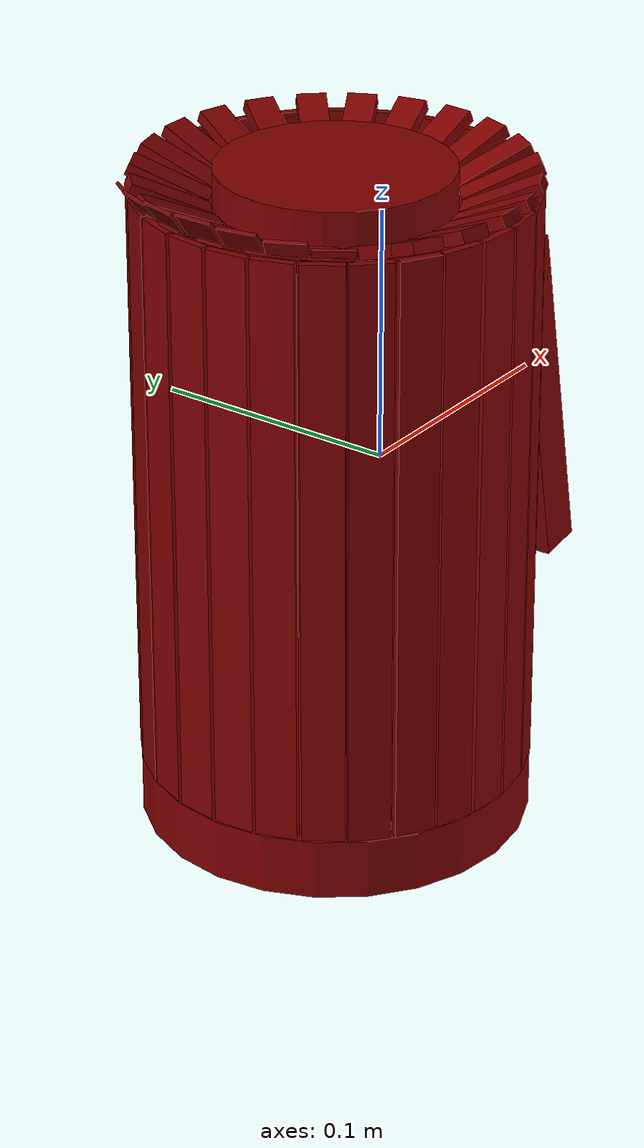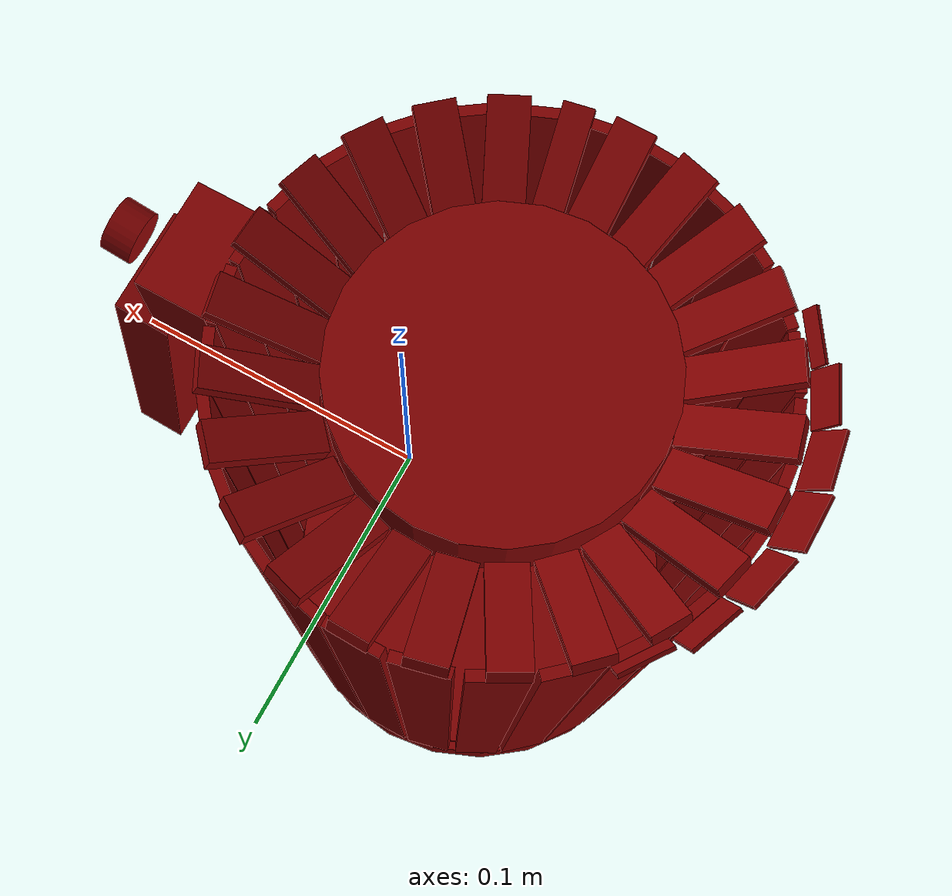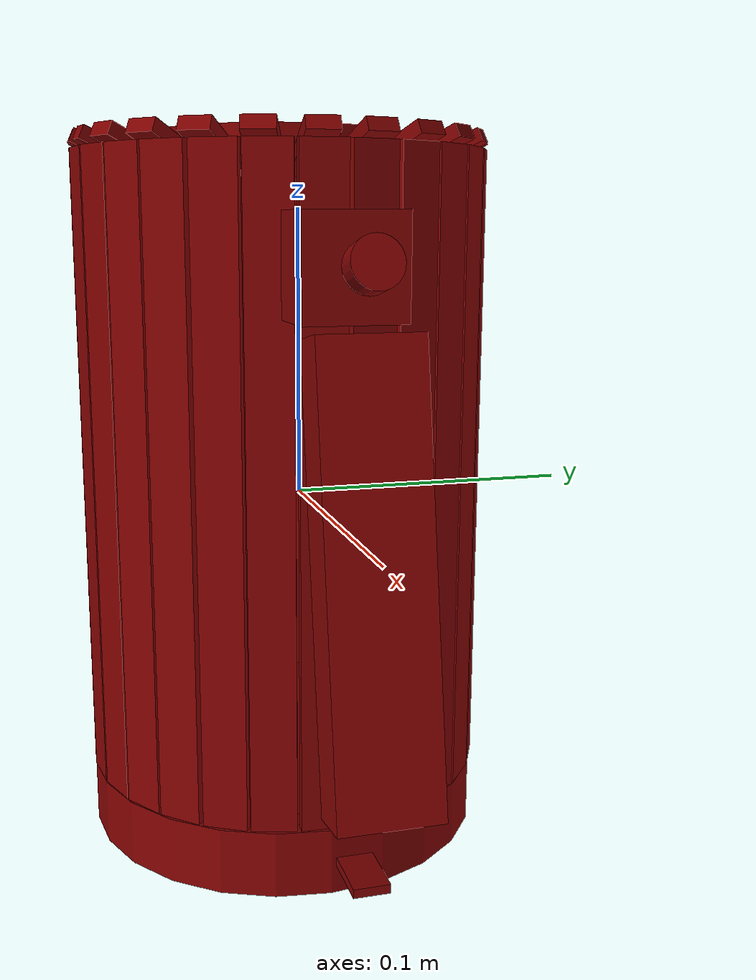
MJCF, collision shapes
<?xml version='1.0' encoding='UTF-8'?>
<mujoco model="model">
  <compiler angle="radian"/>
  <asset>
    <mesh file="visuals/Body001.obj" name="Body001_vis"/>
    <mesh file="visuals/Button001.obj" name="Button001_vis"/>
    <mesh file="visuals/Button002.obj" name="Button002_vis"/>
    <mesh file="visuals/Handle001.obj" name="Handle001_vis"/>
    <mesh file="visuals/Lid001.obj" name="Lid001_vis"/>
    <texture file="visuals/T_BC001.png" name="Body001_material" type="2d"/>
    <material name="Body001_material" rgba="1 1 1 1.0" texture="Body001_material" shininess="0.2512328028678894" specular="0.3103448502657381"/>
    <texture file="visuals/T_BC001.png" name="Button002_material" type="2d"/>
    <material name="Button002_material" rgba="1 1 1 1.0" texture="Button002_material" shininess="0.2512328028678894" specular="0.3103448502657381"/>
    <texture file="visuals/T_BC001.png" name="Handle001_material" type="2d"/>
    <material name="Handle001_material" rgba="1 1 1 1.0" texture="Handle001_material" shininess="0.2512328028678894" specular="0.3103448502657381"/>
    <texture file="visuals/T_BC001.png" name="Button001_material" type="2d"/>
    <material name="Button001_material" rgba="1 1 1 1.0" texture="Button001_material" shininess="0.2512328028678894" specular="0.3103448502657381"/>
    <texture file="visuals/T_BC001.png" name="Lid001_material" type="2d"/>
    <material name="Lid001_material" rgba="1 1 1 1.0" texture="Lid001_material" shininess="0.2512328028678894" specular="0.3103448502657381"/>
  </asset>
  <default>
    <default class="visual">
      <geom conaffinity="0" contype="0" group="1" type="mesh"/>
    </default>
    <default class="collision">
      <geom group="0" rgba="0.5 0 0 0.5"/>
    </default>
    <default class="spawn">
      <geom group="0" rgba="1 1 1 0.5" contype="0" conaffinity="0"/>
      <site group="0" rgba="1 1 1 0.5"/>
    </default>
    <default class="region">
      <geom group="1" conaffinity="0" contype="0" rgba="0 1 0 0"/>
    </default>
  </default>
  <worldbody>
    <body>
      <body name="object">
        <geom mesh="Body001_vis" type="mesh" solimp="0.998 0.998 0.001" solref="0.001 1" density="100" friction="0.95 0.3 0.1" class="visual" material="Body001_material"/>
        <geom class="collision" type="cylinder" pos="-0.028929295018315315 2.581148919489351e-06 -0.12246000021696091" size="0.07494957745075226 0.011956119909882545" quat="0.7071068286895752 0.0 0.0 0.7071067690849304"/>
        <body name="Button002">
          <joint axis="0.0 0.0 -1.0" pos="0.007589974440634251 -0.05207333341240883 -0.1224411204457283" limited="true" name="Button002_joint" range="0.0 0.008" type="slide" damping="1" frictionloss="1" armature=".01" stiffness="0.1" springref="-0.1"/>
          <geom mesh="Button002_vis" type="mesh" solimp="0.998 0.998 0.001" solref="0.001 1" density="100" friction="0.95 0.3 0.1" class="visual" material="Button002_material"/>
          <geom class="collision" type="box" pos="0.05681038647890091 0.008061052300035954 -0.12244119495153427" size="0.0065413122065365314 0.010394074022769928 0.0016201877733692527" quat="0.7071068286895752 0.0 0.0 0.7071067690849304"/>
        </body>
        <body name="Handle001">
          <joint axis="0.0 0.0 1.0" pos="-5.025678183301352e-05 0.02904997393488884 -0.11822239309549332" limited="true" name="Handle001_joint" range="0.0 0.05" type="slide" damping="1" frictionloss="1" armature=".01" stiffness="0.05"/>
          <geom mesh="Handle001_vis" type="mesh" solimp="0.998 0.998 0.001" solref="0.001 1" density="100" friction="0.95 0.3 0.1" class="visual" material="Handle001_material"/>
          <geom class="collision" type="box" pos="-0.028746021911501884 0.0732818990945816 0.005398380570113659" size="0.0015415920643135905 0.008001865819096565 0.1150621846318245" quat="0.7071068286895752 0.0 0.0 0.7071067690849304"/>
          <geom class="collision" type="box" pos="-0.01220120768994093 0.07134705036878586 0.005398380570113659" size="0.0015415920643135905 0.008001865819096565 0.1150621846318245" quat="0.782890260219574 0.0 0.0 0.6221598386764526"/>
          <geom class="collision" type="box" pos="0.003464621491730213 0.06573301553726196 0.005398380570113659" size="0.0015415920643135905 0.008001865819096565 0.1150621846318245" quat="0.8484691977500916 0.0 0.0 0.5292447805404663"/>
          <geom class="collision" type="box" pos="0.017729559913277626 0.056507647037506104 0.005398380570113659" size="0.0015415920643135905 0.00800186488777399 0.1150621846318245" quat="0.9040944576263428 0.0 0.0 0.42733266949653625"/>
          <geom class="collision" type="box" pos="0.029347533360123634 0.04442915692925453 0.005398380570113659" size="0.0015415920643135905 0.008001865819096565 0.1150621846318245" quat="0.9470282793045044 0.0 0.0 0.32115012407302856"/>
          <geom class="collision" type="box" pos="0.03781065344810486 0.03026384487748146 0.005398380570113659" size="0.001541591715067625 0.008001865819096565 0.1150621846318245" quat="0.9771638512611389 0.0 0.0 0.21248725056648254"/>
          <geom class="collision" type="box" pos="0.04296932369470596 0.014166994020342827 0.005398380570113659" size="0.0015415919478982687 0.008001867681741714 0.1150621846318245" quat="0.9951496124267578 0.0 0.0 0.09837330132722855"/>
          <geom class="collision" type="box" pos="0.04430411010980606 -0.0026427763514220715 0.005398380570113659" size="0.0015415919478982687 0.008001870475709438 0.1150621846318245" quat="0.9998592734336853 0.0 0.0 -0.016774829477071762"/>
          <geom class="collision" type="box" pos="0.04171990603208542 -0.019463300704956055 0.005398380570113659" size="0.0015415920643135905 0.008001865819096565 0.1150621846318245" quat="0.9911486506462097 0.0 0.0 -0.13275685906410217"/>
          <geom class="collision" type="box" pos="0.03545235097408295 -0.03500217944383621 0.005398380570113659" size="0.0015415920643135905 0.008001865819096565 0.1150621846318245" quat="0.9694738984107971 0.0 0.0 -0.24519461393356323"/>
          <geom class="collision" type="box" pos="0.025509702041745186 -0.049056846648454666 0.005398380570113659" size="0.0015415920643135905 0.008001865819096565 0.1150621846318245" quat="0.9339609742164612 0.0 0.0 -0.35737496614456177"/>
          <geom class="collision" type="box" pos="0.013113203458487988 -0.06002199649810791 0.005398380570113659" size="0.0015415920643135905 0.008001865819096565 0.1150621846318245" quat="0.8876323699951172 0.0 0.0 -0.46055272221565247"/>
          <geom class="collision" type="box" pos="-0.001493734074756503 -0.0679524764418602 0.005398380570113659" size="0.0015415920643135905 0.008001865819096565 0.1150621846318245" quat="0.8296780586242676 0.0 0.0 -0.55824214220047"/>
          <geom class="collision" type="box" pos="-0.017807703465223312 -0.07243341952562332 0.005398380570113659" size="0.0015415920643135905 0.008001861162483692 0.1150621846318245" quat="0.7596932649612427 0.0 0.0 -0.6502816081047058"/>
          <geom class="collision" type="box" pos="-0.03470594063401222 -0.07305449992418289 0.005398380570113659" size="0.0015415919478982687 0.008001865819096565 0.1150621846318245" quat="0.6795952320098877 0.0 -0.0 -0.7335873246192932"/>
          <geom class="collision" type="box" pos="-0.05161268636584282 -0.06968380510807037 0.005398380570113659" size="0.0015415920643135905 0.008001865819096565 0.1150621846318245" quat="0.5885902047157288 0.0 -0.0 -0.8084315657615662"/>
          <geom class="collision" type="box" pos="-0.06658712029457092 -0.06286726146936417 0.005398380570113659" size="0.0015415920643135905 0.008001865819096565 0.1150621846318245" quat="0.4941175878047943 0.0 -0.0 -0.8693950772285461"/>
          <geom class="collision" type="box" pos="-0.0802859365940094 -0.052277419716119766 0.005398380570113659" size="0.0015415919478982687 0.008001865819096565 0.1150621846318245" quat="0.3879491090774536 0.0 -0.0 -0.9216808080673218"/>
          <geom class="collision" type="box" pos="-0.0907459408044815 -0.03935934603214264 0.005398380570113659" size="0.0015415920643135905 0.008001865819096565 0.1150621846318245" quat="0.28091803193092346 0.0 -0.0 -0.9597317576408386"/>
          <geom class="collision" type="box" pos="-0.09824855625629425 -0.023776207119226456 0.005398380570113659" size="0.0015415920643135905 0.008001865819096565 0.1150621846318245" quat="0.16570313274860382 0.0 -0.0 -0.9861756563186646"/>
          <geom class="collision" type="box" pos="-0.10185074061155319 -0.0072755832225084305 0.005398380570113659" size="0.0015415919478982687 0.008001865819096565 0.1150621846318245" quat="0.05095844343304634 0.0 -0.0 -0.9987007975578308"/>
          <geom class="collision" type="box" pos="-0.10154439508914948 0.009874832816421986 0.005398380570113659" size="0.0015415920643135905 0.008001865819096565 0.1150621846318245" quat="0.06627462059259415 0.0 0.0 0.9978014230728149"/>
          <geom class="collision" type="box" pos="-0.09709819406270981 0.02689702808856964 0.005398380570113659" size="0.0015415919478982687 0.008001865819096565 0.1150621846318245" quat="0.1855694055557251 0.0 0.0 0.9826311469078064"/>
          <geom class="collision" type="box" pos="-0.08885300904512405 0.0421849824488163 0.005398380570113659" size="0.0015415920643135905 0.008001865819096565 0.1150621846318245" quat="0.30071502923965454 0.0 0.0 0.9537140130996704"/>
          <geom class="collision" type="box" pos="-0.07767006754875183 0.05472413823008537 0.005398380570113659" size="0.0015415920643135905 0.00800186675041914 0.1150621846318245" quat="0.4080617427825928 0.0 0.0 0.9129543304443359"/>
          <geom class="collision" type="box" pos="-0.06329141557216644 0.06472712755203247 0.005398380570113659" size="0.0015415920643135905 0.008001865819096565 0.1150621846318245" quat="0.5142439007759094 0.0 0.0 0.8576440215110779"/>
          <geom class="collision" type="box" pos="-0.04591459408402443 0.07128682732582092 0.005398380570113659" size="0.0015415920643135905 0.008001865819096565 0.1150621846318245" quat="0.6187848448753357 0.0 0.0 0.7855605483055115"/>
          <geom class="collision" type="box" pos="0.059638358652591705 -0.00012810695625375956 0.08205839991569519" size="0.016605259850621223 0.013004154898226261 0.016605259850621223" quat="0.7071068286895752 0.0 0.0 0.7071067690849304"/>
          <geom class="collision" type="box" pos="0.09132714569568634 -0.00012810557382181287 -0.0065285153687000275" size="0.016605259850621223 0.008727607317268848 0.07075104862451553" quat="0.7043994069099426 -0.061817627400159836 -0.06181762367486954 0.7043994665145874"/>
          <geom class="collision" type="box" pos="-0.10805518925189972 -0.00012811429041903466 0.12957541644573212" size="0.007659453898668289 0.0006117884768173099 0.005941259674727917" quat="0.6714069247245789 -0.22183959186077118 -0.22183957695960999 0.6714068651199341"/>
          <geom class="collision" type="box" pos="-0.1060585081577301 0.016396580263972282 0.12908588349819183" size="0.007659454829990864 0.0006117884186096489 0.005331745371222496" quat="0.748782217502594 -0.2474053055047989 -0.19291529059410095 0.5838660001754761"/>
          <geom class="collision" type="box" pos="-0.10016939043998718 0.031869128346443176 0.1277521401643753" size="0.007659453898668289 0.0006117885350249708 0.004091222304850817" quat="0.7827544808387756 -0.25863003730773926 -0.17758426070213318 0.5374661087989807"/>
          <geom class="collision" type="box" pos="-0.09080938249826431 0.04559902474284172 0.12561970949172974" size="0.007659454829990864 0.0006117884186096489 0.002036670222878456" quat="0.8421623110771179 -0.2782590091228485 -0.1449054330587387 0.43856239318847656"/>
          <geom class="collision" type="box" pos="-0.10617591440677643 -0.016251906752586365 0.1288733035326004" size="0.00765945203602314 0.0006117884768173099 0.005270771682262421" quat="0.6088082790374756 -0.20115646719932556 -0.2407524734735489 0.7286472320556641"/>
          <geom class="collision" type="box" pos="-0.10032761842012405 -0.03138946741819382 0.12744614481925964" size="0.007659453898668289 0.0006117885350249708 0.004241883289068937" quat="0.5062946081161499 -0.16728492081165314 -0.26540806889533997 0.8032683730125427"/>
          <geom class="collision" type="box" pos="-0.0914573073387146 -0.04480257257819176 0.12581834197044373" size="0.007659455761313438 0.0006117885932326317 0.0021802636329084635" quat="0.4446240961551666 -0.14690832793712616 -0.27720677852630615 0.8389778137207031"/>
          <geom class="collision" type="cylinder" pos="-0.029032636433839798 1.6045830220079438e-09 -0.10732205212116241" size="0.07178782671689987 0.0020471226889640093" quat="1.0 0.0 0.0 0.0"/>
          <body name="Button001">
            <joint axis="-0.9854084849357605 0.0 -0.1702066957950592" pos="0.08976035565137863 -0.00018841159180738032 0.08367190510034561" limited="true" name="Button001_joint" range="0.0 0.004" type="slide" damping="1" frictionloss="1" armature=".01" stiffness="0.1" springref="-0.1"/>
            <geom mesh="Button001_vis" type="mesh" solimp="0.998 0.998 0.001" solref="0.001 1" density="100" friction="0.95 0.3 0.1" class="visual" material="Button001_material"/>
            <geom class="collision" type="cylinder" pos="0.08807972818613052 3.8314262873484495e-09 0.08346343785524368" size="0.008015344850718975 0.004460545722395182" quat="0.5490119457244873 0.44562968611717224 0.4456297755241394 0.5490120053291321"/>
          </body>
          <body name="Lid001">
            <joint axis="0.0 1.0 0.0" pos="0.04456987977027893 -0.00031362404115498066 0.12346040457487106" limited="true" name="Lid001_joint" range="0.0 1.5707963267948966" type="hinge" damping="1" frictionloss="1" armature=".01" stiffness="0.05"/>
            <geom mesh="Lid001_vis" type="mesh" solimp="0.998 0.998 0.001" solref="0.001 1" density="100" friction="0.95 0.3 0.1" class="visual" material="Lid001_material"/>
            <geom class="collision" type="cylinder" pos="-0.028929295018315315 2.580324007794843e-06 0.11506008356809616" size="0.04437635466456413 0.012147023342549801" quat="0.7071068286895752 0.0 0.0 0.7071067690849304"/>
            <geom class="collision" type="box" pos="-0.027612898498773575 -0.060176558792591095 0.1183805763721466" size="0.015615490265190601 0.005620128940790892 0.002410272369161248" quat="0.6915047764778137 -0.14772000908851624 0.14771996438503265 0.691504716873169"/>
            <geom class="collision" type="box" pos="-0.043246496468782425 -0.05846356600522995 0.1183805763721466" size="0.015615488402545452 0.005620129406452179 0.002410272369161248" quat="0.7759190201759338 -0.12715518474578857 0.16575266420841217 0.595237135887146"/>
            <geom class="collision" type="box" pos="-0.05788925662636757 -0.052766554057598114 0.1183805763721466" size="0.015615490265190601 0.005620129406452179 0.0024102728348225355" quat="0.8469710350036621 -0.10443379729986191 0.18093091249465942 0.4888738989830017"/>
            <geom class="collision" type="box" pos="-0.07036696374416351 -0.04365687072277069 0.1183805763721466" size="0.015615490265190601 0.005620128940790892 0.002410272369161248" quat="0.9027070999145508 -0.0803503766655922 0.19283723831176758 0.3761349618434906"/>
            <geom class="collision" type="box" pos="-0.0803668424487114 -0.031260065734386444 0.1183805763721466" size="0.015615490265190601 0.005620129406452179 0.002410272369161248" quat="0.9445363283157349 -0.054130397737026215 0.20177283883094788 0.25339439511299133"/>
            <geom class="collision" type="box" pos="-0.08668943494558334 -0.01667383499443531 0.1183805763721466" size="0.015615490265190601 0.005620129406452179 0.002410272369161248" quat="0.9698748588562012 -0.026767000555992126 0.20718567073345184 0.12530119717121124"/>
            <geom class="collision" type="box" pos="-0.08900310099124908 -0.0012717621866613626 0.1183805763721466" size="0.015615490265190601 0.005620128940790892 0.002410271903499961" quat="0.9779345989227295 0.0002634101256262511 0.2089073359966278 -0.0012332231272011995"/>
            <geom class="collision" type="box" pos="-0.0872548446059227 0.0143406568095088 0.1183805763721466" size="0.015615490265190601 0.005620128940790892 0.002410272369161248" quat="0.9694104790687561 0.027523906901478767 0.2070864886045456 -0.12884457409381866"/>
            <geom class="collision" type="box" pos="-0.08144038915634155 0.0291237011551857 0.1183805763721466" size="0.015615490265190601 0.005620128475129604 0.002410272369161248" quat="0.9439310431480408 0.05461009591817856 0.20164355635643005 -0.25564005970954895"/>
            <geom class="collision" type="box" pos="-0.07182706892490387 0.042008042335510254 0.1183805763721466" size="0.015615490265190601 0.005620128940790892 0.002410272369161248" quat="0.9013394117355347 0.08104799687862396 0.1925450563430786 -0.37940075993537903"/>
            <geom class="collision" type="box" pos="-0.05904533341526985 0.05194714665412903 0.1183805763721466" size="0.015615490265190601 0.005620128940790892 0.0024102728348225355" quat="0.8421201705932617 0.10620882362127304 0.17989465594291687 -0.49718329310417175"/>
            <geom class="collision" type="box" pos="-0.044163722544908524 0.0580967552959919 0.1183805838227272" size="0.015615490265190601 0.005620129406452179 0.0024102728348225355" quat="0.7680498361587524 0.12931713461875916 0.16407182812690735 -0.6053568720817566"/>
            <geom class="collision" type="box" pos="-0.028418060392141342 0.060083016753196716 0.1183805763721466" size="0.015615490265190601 0.005620128940790892 0.002410272601991892" quat="0.6815394759178162 0.1498185098171234 0.14559118449687958 -0.701328456401825"/>
            <geom class="collision" type="box" pos="-0.012787488289177418 0.05790891870856285 0.1183805763721466" size="0.015615490265190601 0.005620129406452179 0.002410272369161248" quat="0.5837196707725525 0.16761139035224915 0.12469482421875 -0.7846202850341797"/>
            <geom class="collision" type="box" pos="0.0021008080802857876 0.051532916724681854 0.1183805763721466" size="0.015615490265190601 0.005620128475129604 0.002410272369161248" quat="0.47284984588623047 0.18286390602588654 0.10101070255041122 -0.8560202121734619"/>
            <geom class="collision" type="box" pos="0.014941973611712456 0.041215721517801285 0.1183805763721466" size="0.01561549212783575 0.005620129406452179 0.002410272369161248" quat="0.3512691259384155 0.19496573507785797 0.07503853738307953 -0.9126705527305603"/>
            <geom class="collision" type="box" pos="0.02414700947701931 0.028477901592850685 0.1183805763721466" size="0.015615490265190601 0.005620128475129604 0.002410272369161248" quat="0.2291143536567688 0.20309333503246307 0.04894360527396202 -0.9507177472114563"/>
            <geom class="collision" type="box" pos="0.0297711081802845 0.013663580641150475 0.1183805763721466" size="0.015615490265190601 0.005620128940790892 0.002410272369161248" quat="0.10197705775499344 0.20776863396167755 0.021784445270895958 -0.9726038575172424"/>
            <geom class="collision" type="box" pos="0.03133144602179527 -0.0021864506416022778 0.1183805763721466" size="0.015615490265190601 0.005620129406452179 0.002410272601991892" quat="0.027596138417720795 -0.20882445573806763 0.005895139183849096 0.9775459170341492"/>
            <geom class="collision" type="box" pos="0.028649762272834778 -0.017988553270697594 0.1183805763721466" size="0.015615490265190601 0.005620128940790892 0.002410272369161248" quat="0.15750408172607422 -0.2061803936958313 0.033646199852228165 0.9651684165000916"/>
            <geom class="collision" type="box" pos="0.021833976730704308 -0.032614413648843765 0.1183805763721466" size="0.01561549212783575 0.005620128940790892 0.002410272369161248" quat="0.28545430302619934 -0.1998097151517868 0.06097901239991188 0.9353467226028442"/>
            <geom class="collision" type="box" pos="0.01164988987147808 -0.044658150523900986 0.1183805763721466" size="0.01561549212783575 0.005620128940790892 0.0024102728348225355" quat="0.40554216504096985 -0.19009798765182495 0.0866323783993721 0.8898837566375732"/>
            <geom class="collision" type="box" pos="-0.001305652316659689 -0.053638845682144165 0.1183805763721466" size="0.015615490265190601 0.005620128940790892 0.002410272369161248" quat="0.5185794234275818 -0.17711658775806427 0.11077948659658432 0.8291158080101013"/>
            <geom class="collision" type="box" pos="-0.014783394522964954 -0.0586848147213459 0.1183805763721466" size="0.015615490265190601 0.004229099955409765 0.002410272601991892" quat="0.6226900219917297 -0.1610843986272812 0.13301981985569 0.7540654540061951"/>
          </body>
        </body>
        <geom class="region" name="reg_main" type="box" pos="1.862645149230957e-09 0.0 0.0" size="0.11227767914533615 0.07477052509784698 0.13465914130210876"/>
      </body>
    </body>
  </worldbody>
  <actuator>
    <motor name="Button002_joint_actuator" joint="Button002_joint" gear="0.5"/>
    <motor name="Handle001_joint_actuator" joint="Handle001_joint" gear="20"/>
    <motor name="Button001_joint_actuator" joint="Button001_joint" gear="0.5"/>
    <motor name="Lid001_joint_actuator" joint="Lid001_joint" gear="5"/>
  </actuator>
</mujoco>
